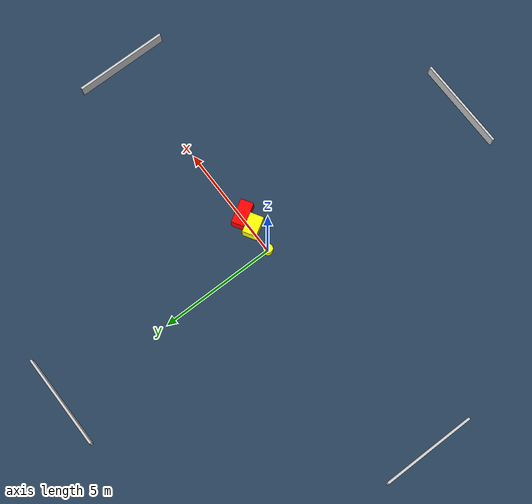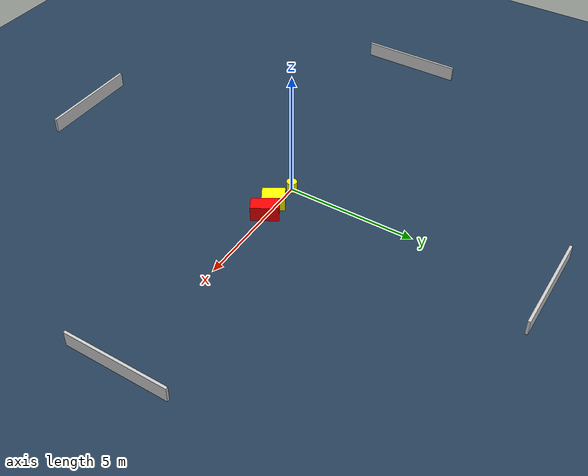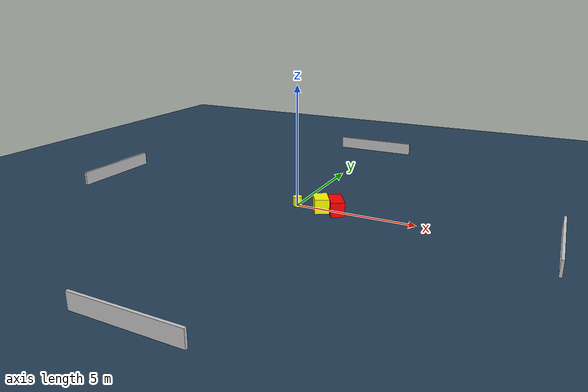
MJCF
<?xml version="1.0" ?>
<mujoco model="generated_environment">
  <option timestep="0.01" integrator="RK4" cone="elliptic"/>
  <default>
    <geom density="1"/>
  </default>
  <asset>
    <texture builtin="gradient" height="3072" name="skybox" rgb1="0.3 0.5 0.7" rgb2="0 0 0" type="skybox" width="512"/>
    <texture builtin="checker" height="300" name="groundplane" rgb1="0.2 0.3 0.4" rgb2="0.1 0.2 0.3" type="2d" width="300"/>
    <material name="groundplane" reflectance="0.2" texrepeat="5 5" texture="groundplane"/>
  </asset>
  <worldbody>
    <light dir="0 0 -1" directional="true" pos="0 0 1.5"/>
    <geom condim="3" friction="0.5 0.005 0.001" material="groundplane" name="floor" pos="0 0 0" size="0 0 0.05" type="plane"/>
    <body name="walls">
      <geom name="wall_1" condim="4" pos="-10.0 0.0 0.3" rgba="0.800000011920929 0.800000011920929 0.800000011920929 1.0" size="0.05 2.0 0.3" type="box"/>
      <geom name="wall_2" condim="4" pos="10.0 0.0 0.3" rgba="0.800000011920929 0.800000011920929 0.800000011920929 1.0" size="0.05 2.0 0.3" type="box"/>
      <geom name="wall_3" condim="4" pos="0.0 -10.0 0.3" rgba="0.800000011920929 0.800000011920929 0.800000011920929 1.0" size="2.0 0.05 0.3" type="box"/>
      <geom name="wall_4" condim="4" pos="0.0 10.0 0.3" rgba="0.800000011920929 0.800000011920929 0.800000011920929 1.0" size="2.0 0.05 0.3" type="box"/>
    </body>
    <body name="robot">
      <joint name="joint_x" type="slide" pos="0 0 0" axis="1 0 0"/>
      <joint name="joint_y" type="slide" pos="0 0 0" axis="0 1 0"/>
      <geom name="robot" type="cylinder" pos="0.0 0.0 0.2" size="0.2 0.2 0.0" mass="5.0" friction="1.0 0.005 0.0001" condim="4" rgba="1.0 1.0 0.0 1.0"/>
    </body>
    <body name="obstacle_1_movable">
      <geom name="obstacle_1_movable" condim="4" pos="1.104080278467036 -0.09421999744601968 0.3" euler="0 0 210.85487748940622" friction="0.0 0.005 0.001" rgba="1.0 1.0 0.0 1.0" size="0.29339157862427856 0.4295413401747994 0.3" type="box" mass="0.1"/>
      <joint type="free"/>
    </body>
    <body name="obstacle_2_static">
      <geom name="obstacle_2_static" condim="4" pos="1.748918510656793 -0.05370954834552925 0.3" euler="0 0 300.7287170803277" friction="0.0 0.005 0.001" rgba="1.0 0.0 0.0 1.0" size="0.5202830519018705 0.2785106644365851 0.3" type="box"/>
    </body>
  </worldbody>
  <actuator>
    <motor name="actuator_x" joint="joint_x" gear="1" ctrlrange="-1 1"/>
    <motor name="actuator_y" joint="joint_y" gear="1" ctrlrange="-1 1"/>
  </actuator>
</mujoco>
